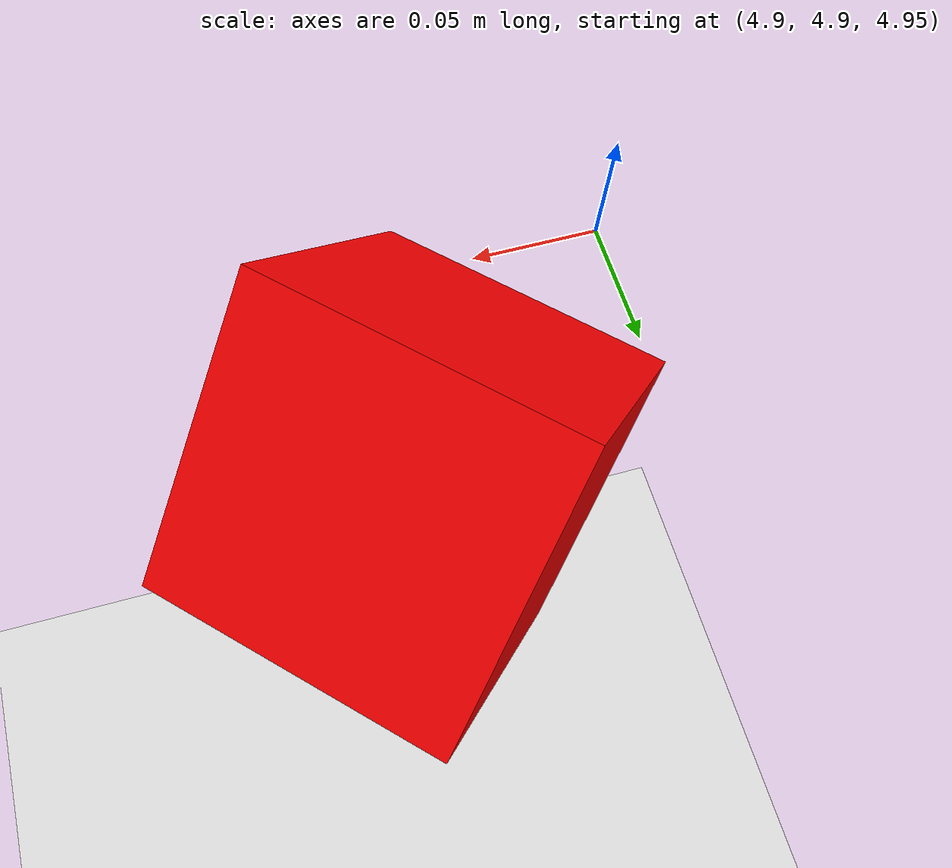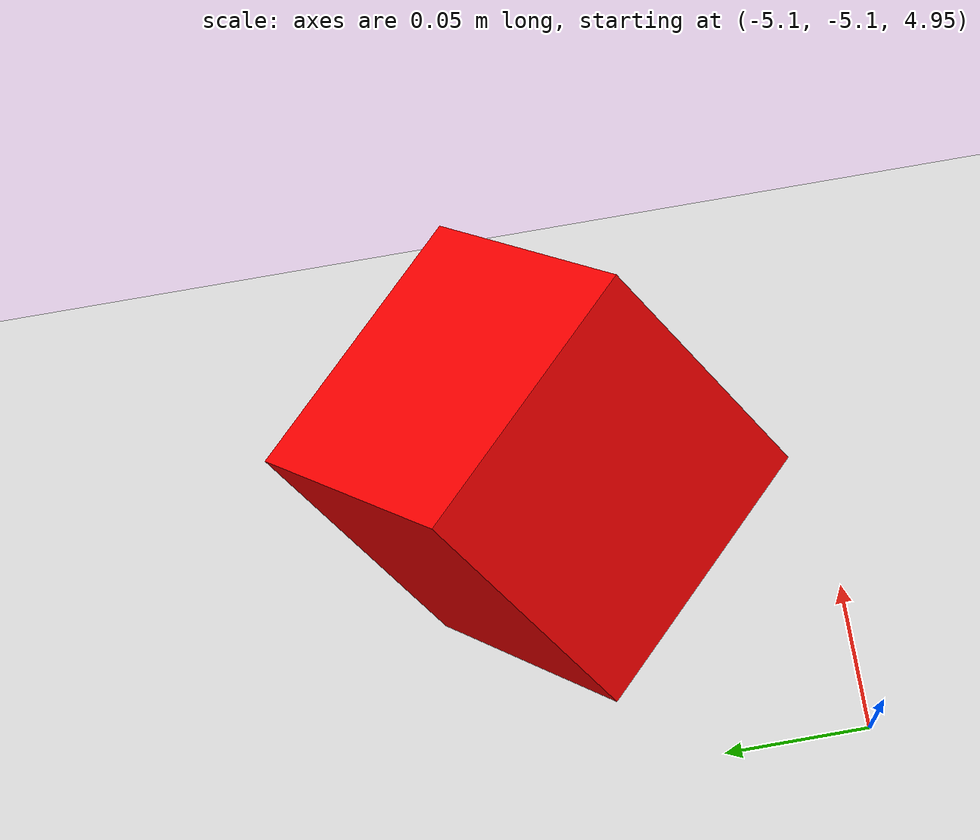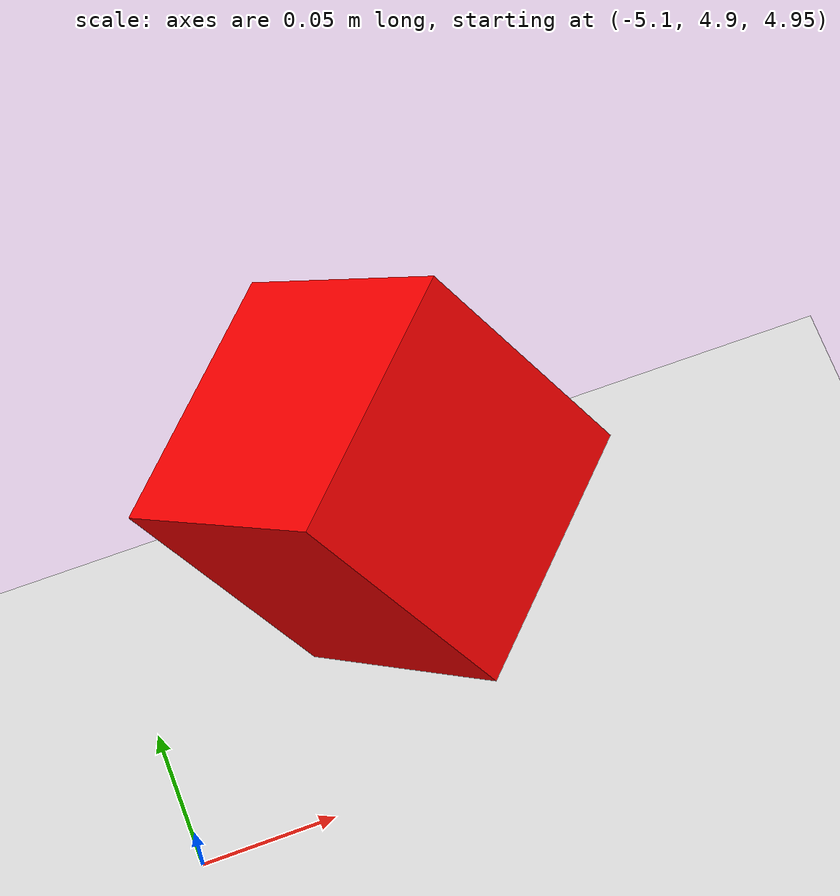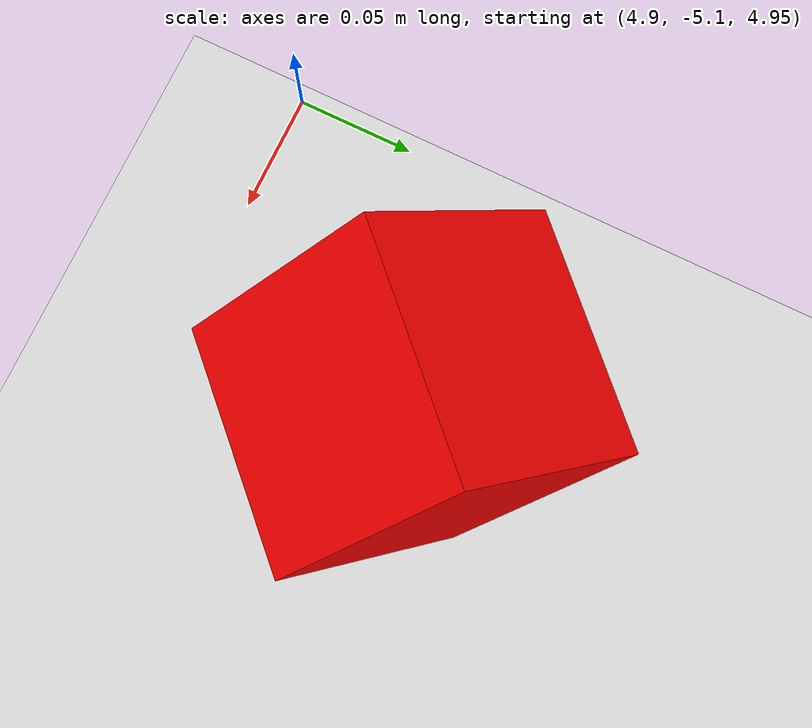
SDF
<?xml version="1.0" ?>
<sdf version="1.9">
  <world name="mocap">
    <physics name="1ms" type="ignore">
      <max_step_size>0.001</max_step_size>
      <real_time_factor>1.0</real_time_factor>
    </physics>

    <plugin name="gz::sim::systems::Physics"
      filename="gz-sim-physics-system">
    </plugin>
    <plugin name="gz::sim::systems::Sensors"
      filename="gz-sim-sensors-system">
      <render_engine>ogre2</render_engine>
    </plugin>
    <plugin name="gz::sim::systems::UserCommands"
      filename="gz-sim-user-commands-system">
    </plugin>
    <plugin name="gz::sim::systems::SceneBroadcaster"
      filename="gz-sim-scene-broadcaster-system">
    </plugin>
    <plugin name="gz::sim::systems::Imu"
      filename="gz-sim-imu-system">
    </plugin>

    <scene>
      <ambient>1.0 1.0 1.0</ambient>
      <background>0.8 0.8 0.8</background>
      <sky></sky>
    </scene>

    <light type="directional" name="sun">
      <cast_shadows>true</cast_shadows>
      <pose>0 0 10 0 0 0</pose>
      <diffuse>0.8 0.8 0.8 1</diffuse>
      <specular>0.8 0.8 0.8 1</specular>
      <attenuation>
        <range>1000</range>
        <constant>0.9</constant>
        <linear>0.01</linear>
        <quadratic>0.001</quadratic>
      </attenuation>
      <direction>-0.5 0.1 -0.9</direction>
    </light>

    <model name="ground_plane">
      <static>true</static>
      <link name="link">
        <collision name="collision">
          <geometry>
            <plane>
              <normal>0 0 1</normal>
              <size>100 100</size>
            </plane>
          </geometry>
        </collision>
        <visual name="visual">
          <geometry>
            <plane>
              <normal>0 0 1</normal>
              <size>100 100</size>
            </plane>
          </geometry>
          <material>
            <ambient>0.8 0.8 0.8 1</ambient>
            <diffuse>0.8 0.8 0.8 1</diffuse>
            <specular>0.8 0.8 0.8 1</specular>
          </material>
        </visual>
      </link>
    </model>

    <!-- Cameras. -->
    <model name="camera_1">
      <static>1</static>
      <pose degrees="true">5 5 5 0 45 -135</pose>
      <link name="camera_link">
        <visual name="visual">
          <geometry>
            <box>
              <size>0.1 0.1 0.1</size>
            </box>
          </geometry>
          <material>
            <ambient>1 0 0 1</ambient>
            <diffuse>1 0 0 1</diffuse>
            <specular>0.01 0.01 0.01 1</specular>
          </material>
        </visual>
        <sensor name="camera" type="camera">
          <gz_frame_id>camera_link</gz_frame_id>
          <pose degrees="true">0 0 0 0 0 0</pose>
          <camera>
            <horizontal_fov>2.0</horizontal_fov>
            <image>
              <width>640</width>
              <height>480</height>
            </image>
            <clip>
              <near>0.05</near>
              <far>15000</far>
            </clip>
          </camera>
          <always_on>1</always_on>
          <update_rate>10</update_rate>
          <visualize>1</visualize>
          <plugin name="GstCameraPlugin"
              filename="GstCameraPlugin">
            <udp_host>127.0.0.1</udp_host>
            <udp_port>5610</udp_port>
            <use_basic_pipeline>true</use_basic_pipeline>
            <use_cuda>false</use_cuda>
          </plugin>
        </sensor>
      </link>
    </model>

    <model name="camera_2">
      <static>1</static>
      <pose degrees="true">-5 5 5 0 45 -45</pose>
      <link name="camera_link">
        <visual name="visual">
          <geometry>
            <box>
              <size>0.1 0.1 0.1</size>
            </box>
          </geometry>
          <material>
            <ambient>1 0 0 1</ambient>
            <diffuse>1 0 0 1</diffuse>
            <specular>0.01 0.01 0.01 1</specular>
          </material>
        </visual>
        <sensor name="camera" type="camera">
          <gz_frame_id>camera_link</gz_frame_id>
          <pose degrees="true">0 0 0 0 0 0</pose>
          <camera>
            <horizontal_fov>2.0</horizontal_fov>
            <image>
              <width>640</width>
              <height>480</height>
            </image>
            <clip>
              <near>0.05</near>
              <far>15000</far>
            </clip>
          </camera>
          <always_on>1</always_on>
          <update_rate>10</update_rate>
          <visualize>1</visualize>
          <plugin name="GstCameraPlugin"
              filename="GstCameraPlugin">
            <udp_host>127.0.0.1</udp_host>
            <udp_port>5620</udp_port>
            <use_basic_pipeline>true</use_basic_pipeline>
            <use_cuda>false</use_cuda>
          </plugin>
        </sensor>
      </link>
    </model>

    <model name="camera_3">
      <static>1</static>
      <pose degrees="true">-5 -5 5 0 45 45</pose>
      <link name="camera_link">
        <visual name="visual">
          <geometry>
            <box>
              <size>0.1 0.1 0.1</size>
            </box>
          </geometry>
          <material>
            <ambient>1 0 0 1</ambient>
            <diffuse>1 0 0 1</diffuse>
            <specular>0.01 0.01 0.01 1</specular>
          </material>
        </visual>
        <sensor name="camera" type="camera">
          <gz_frame_id>camera_link</gz_frame_id>
          <pose degrees="true">0 0 0 0 0 0</pose>
          <camera>
            <horizontal_fov>2.0</horizontal_fov>
            <image>
              <width>640</width>
              <height>480</height>
            </image>
            <clip>
              <near>0.05</near>
              <far>15000</far>
            </clip>
          </camera>
          <always_on>1</always_on>
          <update_rate>10</update_rate>
          <visualize>1</visualize>
          <plugin name="GstCameraPlugin"
              filename="GstCameraPlugin">
            <udp_host>127.0.0.1</udp_host>
            <udp_port>5630</udp_port>
            <use_basic_pipeline>true</use_basic_pipeline>
            <use_cuda>false</use_cuda>
          </plugin>
        </sensor>
      </link>
    </model>

    <model name="camera_4">
      <static>1</static>
      <pose degrees="true">5 -5 5 0 45 135</pose>
      <link name="camera_link">
        <visual name="visual">
          <geometry>
            <box>
              <size>0.1 0.1 0.1</size>
            </box>
          </geometry>
          <material>
            <ambient>1 0 0 1</ambient>
            <diffuse>1 0 0 1</diffuse>
            <specular>0.01 0.01 0.01 1</specular>
          </material>
        </visual>
        <sensor name="camera" type="camera">
          <gz_frame_id>camera_link</gz_frame_id>
          <pose degrees="true">0 0 0 0 0 0</pose>
          <camera>
            <horizontal_fov>2.0</horizontal_fov>
            <image>
              <width>640</width>
              <height>480</height>
            </image>
            <clip>
              <near>0.05</near>
              <far>15000</far>
            </clip>
          </camera>
          <always_on>1</always_on>
          <update_rate>10</update_rate>
          <visualize>1</visualize>
          <plugin name="GstCameraPlugin"
              filename="GstCameraPlugin">
            <udp_host>127.0.0.1</udp_host>
            <udp_port>5640</udp_port>
            <use_basic_pipeline>true</use_basic_pipeline>
            <use_cuda>false</use_cuda>
          </plugin>
        </sensor>
      </link>
    </model>

  </world>
</sdf>
